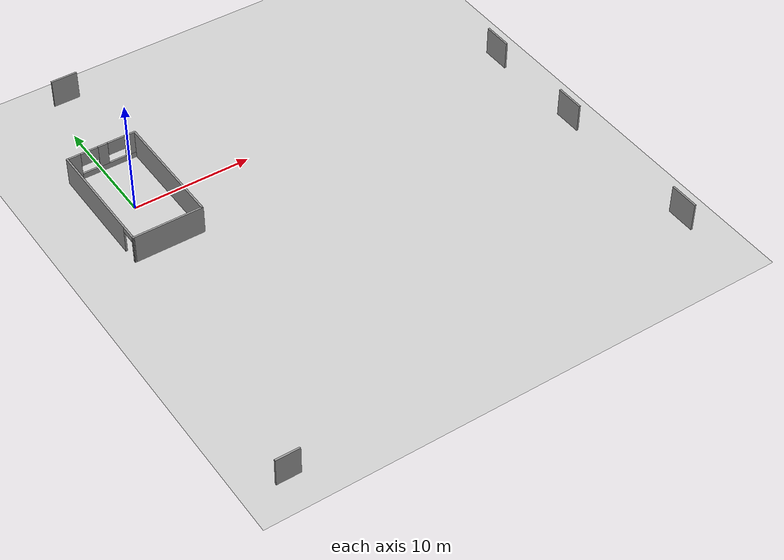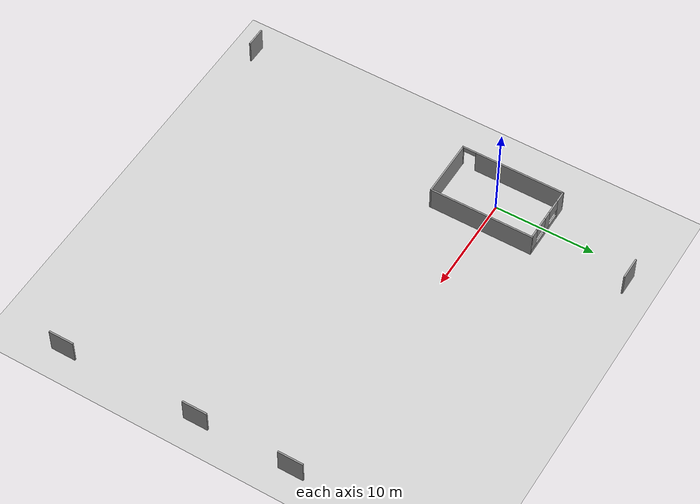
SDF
<sdf version="1.7">
 <world name="default">
  <light name="sun" type="directional">
   <pose>0 0 10 0 -0 0</pose>
   <diffuse>0.8 0.8 0.8 1</diffuse>
   <specular>0.2 0.2 0.2 1</specular>
   <attenuation>
    <range>1000</range>
    <constant>0.9</constant>
    <linear>0.01</linear>
    <quadratic>0.001</quadratic>
   </attenuation>
   <direction>-0.5 0.1 -0.9</direction>
   <spot><inner_angle>0</inner_angle><outer_angle>0</outer_angle><falloff>0</falloff></spot>
  </light>
  <model name="ground_plane">
   <static>1</static>
   <link name="link">
    <collision name="collision">
     <geometry><plane><normal>0 0 1</normal><size>100 100</size></plane></geometry>
     <surface><friction><ode><mu>100</mu><mu2>50</mu2></ode></friction></surface>
    </collision>
    <visual name="visual">
     <cast_shadows>0</cast_shadows>
     <geometry><plane><normal>0 0 1</normal><size>100 100</size></plane></geometry>
     <material>
      <script><uri>file://media/materials/scripts/gazebo.material</uri><name>Gazebo/Grey</name></script>
     </material>
    </visual>
   </link>
  </model>
  <gravity>0 0 -9.8</gravity>
  <magnetic_field>6e-06 2.3e-05 -4.2e-05</magnetic_field>
  <atmosphere type="adiabatic"/>
  <physics type="ode">
   <max_step_size>0.001</max_step_size>
   <real_time_factor>1</real_time_factor>
   <real_time_update_rate>1000</real_time_update_rate>
  </physics>
  <scene><ambient>0.4 0.4 0.4 1</ambient><background>0.7 0.7 0.7 1</background><shadows>1</shadows></scene>
  <audio><device>default</device></audio>
  <spherical_coordinates>
   <surface_model>EARTH_WGS84</surface_model>
   <latitude_deg>0</latitude_deg>
   <longitude_deg>0</longitude_deg>
   <elevation>0</elevation>
   <heading_deg>0</heading_deg>
  </spherical_coordinates>
  <model name="new_room">
   <pose>0.11389 0.029307 0 0 -0 0</pose>
   <link name="Wall_5">
    <pose>-2.925 0 0 0 -0 1.5708</pose>
    <visual name="Wall_5_Visual_0">
     <pose>-5.16426 0 1.25 0 -0 0</pose>
     <geometry><box><size>0.171477 0.15 2.5</size></box></geometry>
     <material>
      <script><uri>file://media/materials/scripts/gazebo.material</uri><name>Gazebo/Grey</name></script>
      <ambient>1 1 1 1</ambient>
     </material>
     <meta><layer>0</layer></meta>
    </visual>
    <collision name="Wall_5_Collision_0">
     <geometry><box><size>0.171477 0.15 2.5</size></box></geometry>
     <pose>-5.16426 0 1.25 0 -0 0</pose>
    </collision>
    <visual name="Wall_5_Visual_1">
     <pose>0.716761 0 1.25 0 -0 0</pose>
     <geometry><box><size>9.06648 0.15 2.5</size></box></geometry>
     <material>
      <script><uri>file://media/materials/scripts/gazebo.material</uri><name>Gazebo/Grey</name></script>
      <ambient>1 1 1 1</ambient>
     </material>
     <meta><layer>0</layer></meta>
    </visual>
    <collision name="Wall_5_Collision_1">
     <geometry><box><size>9.06648 0.15 2.5</size></box></geometry>
     <pose>0.716761 0 1.25 0 -0 0</pose>
    </collision>
    <visual name="Wall_5_Visual_2">
     <pose>-4.4475 0 2.25 0 -0 0</pose>
     <geometry><box><size>1.26204 0.15 0.5</size></box></geometry>
     <material>
      <script><uri>file://media/materials/scripts/gazebo.material</uri><name>Gazebo/Grey</name></script>
      <ambient>1 1 1 1</ambient>
     </material>
     <meta><layer>0</layer></meta>
    </visual>
    <collision name="Wall_5_Collision_2">
     <geometry><box><size>1.26204 0.15 0.5</size></box></geometry>
     <pose>-4.4475 0 2.25 0 -0 0</pose>
    </collision>
   </link>
   <link name="Wall_6">
    <pose>-0 5.175 0 0 -0 0</pose>
    <visual name="Wall_6_Visual_0">
     <pose>-2.40831 0 1.25 0 -0 0</pose>
     <geometry><box><size>1.18338 0.15 2.5</size></box></geometry>
     <material>
      <script><uri>file://media/materials/scripts/gazebo.material</uri><name>Gazebo/Grey</name></script>
      <ambient>1 1 1 1</ambient>
     </material>
     <meta><layer>0</layer></meta>
    </visual>
    <collision name="Wall_6_Collision_0">
     <geometry><box><size>1.18338 0.15 2.5</size></box></geometry>
     <pose>-2.40831 0 1.25 0 -0 0</pose>
    </collision>
    <visual name="Wall_6_Visual_1">
     <pose>0.591691 0 0.25 0 -0 0</pose>
     <geometry><box><size>4.81662 0.15 0.5</size></box></geometry>
     <material>
      <script><uri>file://media/materials/scripts/gazebo.material</uri><name>Gazebo/Grey</name></script>
      <ambient>1 1 1 1</ambient>
     </material>
     <meta><layer>0</layer></meta>
    </visual>
    <collision name="Wall_6_Collision_1">
     <geometry><box><size>4.81662 0.15 0.5</size></box></geometry>
     <pose>0.591691 0 0.25 0 -0 0</pose>
    </collision>
    <visual name="Wall_6_Visual_2">
     <pose>0.101957 0 1.5 0 -0 0</pose>
     <geometry><box><size>0.829199 0.15 2</size></box></geometry>
     <material>
      <script><uri>file://media/materials/scripts/gazebo.material</uri><name>Gazebo/Grey</name></script>
      <ambient>1 1 1 1</ambient>
     </material>
     <meta><layer>0</layer></meta>
    </visual>
    <collision name="Wall_6_Collision_2">
     <geometry><box><size>0.829199 0.15 2</size></box></geometry>
     <pose>0.101957 0 1.5 0 -0 0</pose>
    </collision>
    <visual name="Wall_6_Visual_3">
     <pose>2.51027 0 1.5 0 -0 0</pose>
     <geometry><box><size>0.979468 0.15 2</size></box></geometry>
     <material>
      <script><uri>file://media/materials/scripts/gazebo.material</uri><name>Gazebo/Grey</name></script>
      <ambient>1 1 1 1</ambient>
     </material>
     <meta><layer>0</layer></meta>
    </visual>
    <collision name="Wall_6_Collision_3">
     <geometry><box><size>0.979468 0.15 2</size></box></geometry>
     <pose>2.51027 0 1.5 0 -0 0</pose>
    </collision>
    <visual name="Wall_6_Visual_4">
     <pose>-1.06463 0 1.9 0 -0 0</pose>
     <geometry><box><size>1.50398 0.15 1.2</size></box></geometry>
     <material>
      <script><uri>file://media/materials/scripts/gazebo.material</uri><name>Gazebo/Grey</name></script>
      <ambient>1 1 1 1</ambient>
     </material>
     <meta><layer>0</layer></meta>
    </visual>
    <collision name="Wall_6_Collision_4">
     <geometry><box><size>1.50398 0.15 1.2</size></box></geometry>
     <pose>-1.06463 0 1.9 0 -0 0</pose>
    </collision>
    <visual name="Wall_6_Visual_5">
     <pose>1.26854 0 1.9 0 -0 0</pose>
     <geometry><box><size>1.50398 0.15 1.2</size></box></geometry>
     <material>
      <script><uri>file://media/materials/scripts/gazebo.material</uri><name>Gazebo/Grey</name></script>
      <ambient>1 1 1 1</ambient>
     </material>
     <meta><layer>0</layer></meta>
    </visual>
    <collision name="Wall_6_Collision_5">
     <geometry><box><size>1.50398 0.15 1.2</size></box></geometry>
     <pose>1.26854 0 1.9 0 -0 0</pose>
    </collision>
   </link>
   <link name="Wall_7">
    <collision name="Wall_7_Collision">
     <geometry><box><size>10.5 0.15 2.5</size></box></geometry>
     <pose>0 0 1.25 0 -0 0</pose>
    </collision>
    <visual name="Wall_7_Visual">
     <pose>0 0 1.25 0 -0 0</pose>
     <geometry><box><size>10.5 0.15 2.5</size></box></geometry>
     <material>
      <script><uri>file://media/materials/scripts/gazebo.material</uri><name>Gazebo/Grey</name></script>
      <ambient>1 1 1 1</ambient>
     </material>
     <meta><layer>0</layer></meta>
    </visual>
    <pose>2.925 0 0 0 -0 -1.5708</pose>
   </link>
   <link name="Wall_8">
    <collision name="Wall_8_Collision">
     <geometry><box><size>6 0.15 2.5</size></box></geometry>
     <pose>0 0 1.25 0 -0 0</pose>
    </collision>
    <visual name="Wall_8_Visual">
     <pose>0 0 1.25 0 -0 0</pose>
     <geometry><box><size>6 0.15 2.5</size></box></geometry>
     <material>
      <script><uri>file://media/materials/scripts/gazebo.material</uri><name>Gazebo/Grey</name></script>
      <ambient>1 1 1 1</ambient>
     </material>
     <meta><layer>0</layer></meta>
    </visual>
    <pose>-0 -5.175 0 0 -0 3.14159</pose>
   </link>
   <static>1</static>
  </model>
  <model name="fix_wall1">
   <pose>1.34324 6.83642 0 0 -0 0</pose>
   <link name="Wall_10">
    <collision name="Wall_10_Collision">
     <geometry><box><size>2.25 0.15 2.5</size></box></geometry>
     <pose>0 0 1.25 0 -0 0</pose>
    </collision>
    <visual name="Wall_10_Visual">
     <pose>0 0 1.25 0 -0 0</pose>
     <geometry><box><size>2.25 0.15 2.5</size></box></geometry>
     <material>
      <script><uri>file://media/materials/scripts/gazebo.material</uri><name>Gazebo/Grey</name></script>
      <ambient>1 1 1 1</ambient>
     </material>
     <meta><layer>0</layer></meta>
    </visual>
    <pose>0.218244 7.39307 0 0 -0 3.14159</pose>
   </link>
   <static>1</static>
  </model>
  <model name="fix_wall2_0">
   <pose>-1.62486 -23.6199 0 0 -0 0</pose>
   <link name="Wall_19">
    <collision name="Wall_19_Collision">
     <geometry><box><size>2 0.15 2.5</size></box></geometry>
     <pose>0 0 1.25 0 -0 0</pose>
    </collision>
    <visual name="Wall_19_Visual">
     <pose>0 0 1.25 0 -0 0</pose>
     <geometry><box><size>2 0.15 2.5</size></box></geometry>
     <material>
      <script><uri>file://media/materials/scripts/gazebo.material</uri><name>Gazebo/Grey</name></script>
      <ambient>1 1 1 1</ambient>
     </material>
     <meta><layer>0</layer></meta>
    </visual>
    <pose>-2.67199 -5.07684 0 0 -0 0</pose>
   </link>
   <static>1</static>
  </model>
  <model name="fix_wall3">
   <pose>34.3881 2.30922 0 0 -0 0</pose>
   <link name="Wall_21">
    <collision name="Wall_21_Collision">
     <geometry><box><size>2.5 0.15 2.5</size></box></geometry>
     <pose>0 0 1.25 0 -0 0</pose>
    </collision>
    <visual name="Wall_21_Visual">
     <pose>0 0 1.25 0 -0 0</pose>
     <geometry><box><size>2.5 0.15 2.5</size></box></geometry>
     <material>
      <script><uri>file://media/materials/scripts/gazebo.material</uri><name>Gazebo/Grey</name></script>
      <ambient>1 1 1 1</ambient>
     </material>
     <meta><layer>0</layer></meta>
    </visual>
    <pose>-0.730809 -3.17775 0 0 -0 1.5708</pose>
   </link>
   <static>1</static>
  </model>
  <model name="fix_wall3_clone">
   <pose>34.3959 -7.23107 0 0 -0 0</pose>
   <link name="Wall_21">
    <collision name="Wall_21_Collision">
     <geometry><box><size>2.5 0.15 2.5</size></box></geometry>
     <pose>0 0 1.25 0 -0 0</pose>
    </collision>
    <visual name="Wall_21_Visual">
     <pose>0 0 1.25 0 -0 0</pose>
     <geometry><box><size>2.5 0.15 2.5</size></box></geometry>
     <material>
      <script><uri>file://media/materials/scripts/gazebo.material</uri><name>Gazebo/Grey</name></script>
      <ambient>1 1 1 1</ambient>
     </material>
     <meta><layer>0</layer></meta>
    </visual>
    <pose>-0.730809 -3.17775 0 0 -0 1.5708</pose>
   </link>
   <static>1</static>
  </model>
  <model name="fix_wall3_clone_0">
   <pose>34.3951 -21 0 0 -0 0</pose>
   <link name="Wall_21">
    <collision name="Wall_21_Collision">
     <geometry><box><size>2.5 0.15 2.5</size></box></geometry>
     <pose>0 0 1.25 0 -0 0</pose>
    </collision>
    <visual name="Wall_21_Visual">
     <pose>0 0 1.25 0 -0 0</pose>
     <geometry><box><size>2.5 0.15 2.5</size></box></geometry>
     <material>
      <script><uri>file://media/materials/scripts/gazebo.material</uri><name>Gazebo/Grey</name></script>
      <ambient>1 1 1 1</ambient>
     </material>
     <meta><layer>0</layer></meta>
    </visual>
    <pose>-0.730809 -3.17775 0 0 -0 1.5708</pose>
   </link>
   <static>1</static>
  </model>
 </world>
</sdf>
